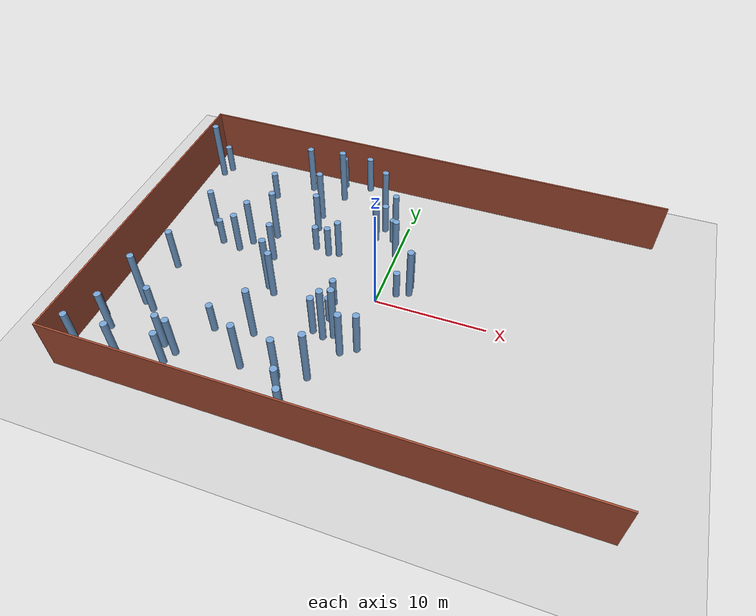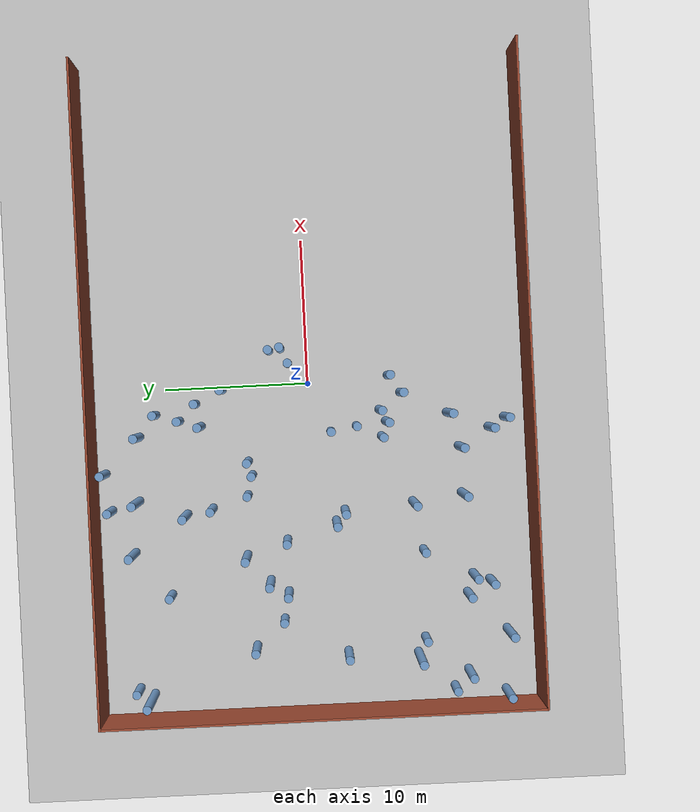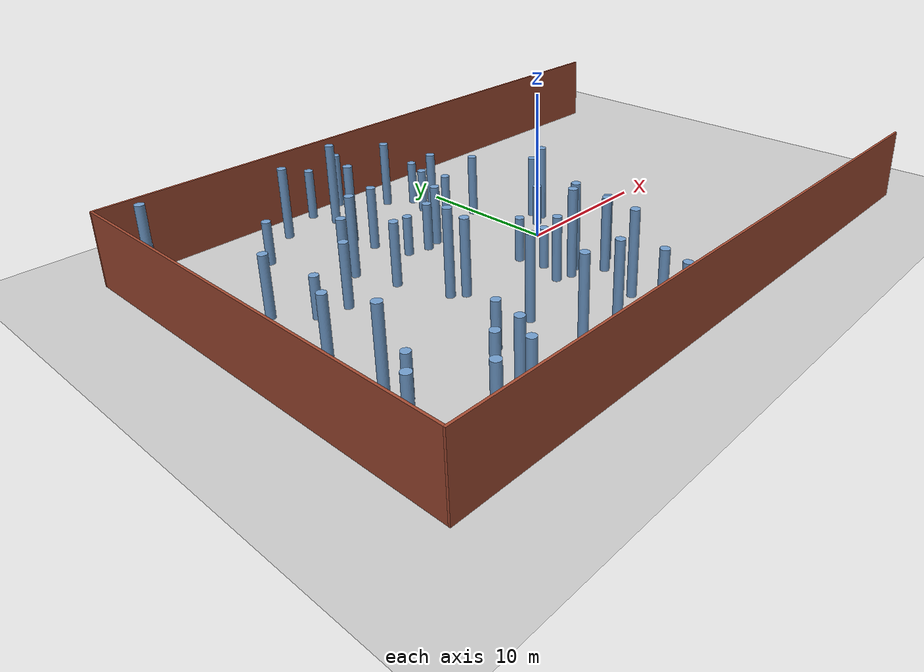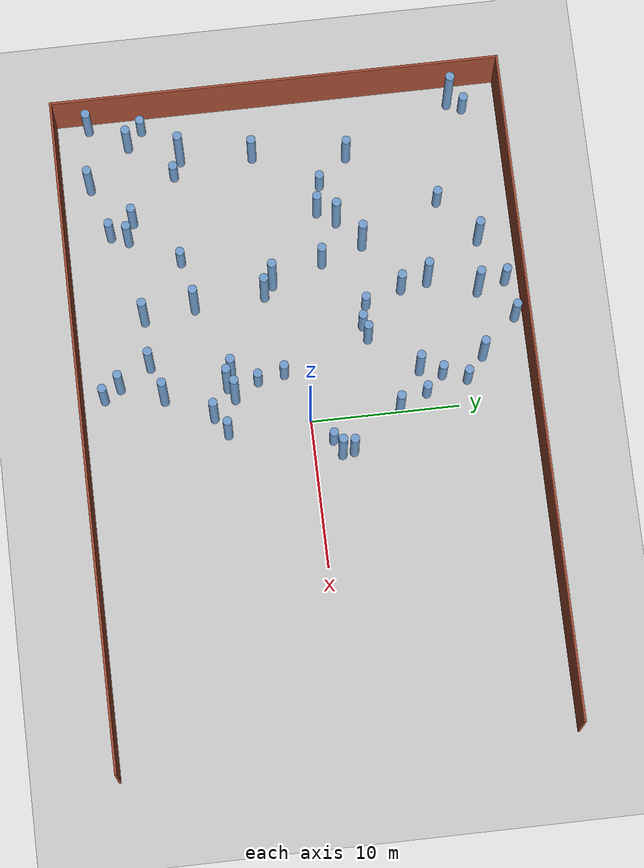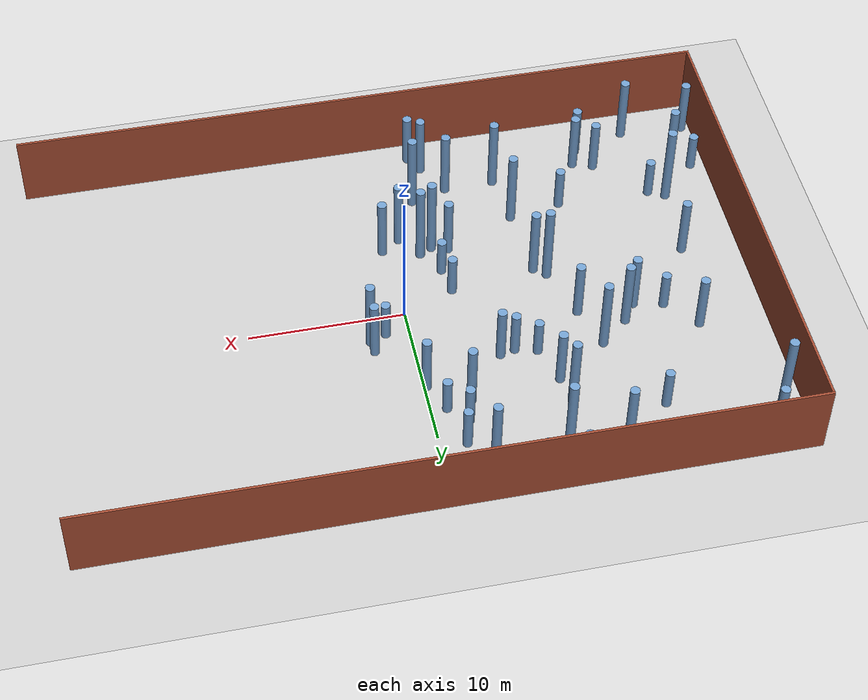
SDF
<sdf version="1.6">
 <world name="random_cylinder_world">
  <model name="ground_plane">
   <static>1</static>
   <link name="link">
    <collision name="collision">
     <geometry><plane><normal>0 0 1</normal><size>55.300000 55.300000</size></plane></geometry>
    </collision>
    <visual name="visual">
     <geometry><plane><normal>0 0 1</normal><size>55.300000 55.300000</size></plane></geometry>
     <material>
      <script><uri>file://media/materials/scripts/gazebo.material</uri><name>Gazebo/Grey</name></script>
     </material>
    </visual>
   </link>
  </model>
  <model name="wall_north">
   <static>1</static>
   <pose>0.000000 15.075000 2.500000 0 0 0</pose>
   <link name="link">
    <collision name="collision">
     <geometry><box><size>45.300000 0.150000 5.000000</size></box></geometry>
    </collision>
    <visual name="visual">
     <geometry><box><size>45.300000 0.150000 5.000000</size></box></geometry>
     <material>
      <script><uri>file://media/materials/scripts/gazebo.material</uri><name>Gazebo/Bricks</name></script>
     </material>
    </visual>
   </link>
  </model>
  <model name="wall_south">
   <static>1</static>
   <pose>0.000000 -15.075000 2.500000 0 0 0</pose>
   <link name="link">
    <collision name="collision">
     <geometry><box><size>45.300000 0.150000 5.000000</size></box></geometry>
    </collision>
    <visual name="visual">
     <geometry><box><size>45.300000 0.150000 5.000000</size></box></geometry>
     <material>
      <script><uri>file://media/materials/scripts/gazebo.material</uri><name>Gazebo/Bricks</name></script>
     </material>
    </visual>
   </link>
  </model>
  <model name="wall_west">
   <static>1</static>
   <pose>-22.575000 0.000000 2.500000 0 0 0</pose>
   <link name="link">
    <collision name="collision">
     <geometry><box><size>0.150000 30.000000 5.000000</size></box></geometry>
    </collision>
    <visual name="visual">
     <geometry><box><size>0.150000 30.000000 5.000000</size></box></geometry>
     <material>
      <script><uri>file://media/materials/scripts/gazebo.material</uri><name>Gazebo/Bricks</name></script>
     </material>
    </visual>
   </link>
  </model>
  <model name="cylinder_0000">
   <static>1</static>
   <pose>-3.167085 11.953957 2.323860 0 0 0</pose>
   <link name="link">
    <collision name="collision">
     <geometry><cylinder><radius>0.300000</radius><length>4.647720</length></cylinder></geometry>
    </collision>
    <visual name="visual">
     <geometry><cylinder><radius>0.300000</radius><length>4.647720</length></cylinder></geometry>
     <material><ambient>0.447 0.624 0.812 1</ambient><diffuse>0.447 0.624 0.812 1</diffuse></material>
    </visual>
   </link>
  </model>
  <model name="cylinder_0002">
   <static>1</static>
   <pose>-8.221317 14.086157 1.764251 0 0 0</pose>
   <link name="link">
    <collision name="collision">
     <geometry><cylinder><radius>0.300000</radius><length>3.528502</length></cylinder></geometry>
    </collision>
    <visual name="visual">
     <geometry><cylinder><radius>0.300000</radius><length>3.528502</length></cylinder></geometry>
     <material><ambient>0.447 0.624 0.812 1</ambient><diffuse>0.447 0.624 0.812 1</diffuse></material>
    </visual>
   </link>
  </model>
  <model name="cylinder_0003">
   <static>1</static>
   <pose>-13.762231 -10.904049 2.139732 0 0 0</pose>
   <link name="link">
    <collision name="collision">
     <geometry><cylinder><radius>0.300000</radius><length>4.279463</length></cylinder></geometry>
    </collision>
    <visual name="visual">
     <geometry><cylinder><radius>0.300000</radius><length>4.279463</length></cylinder></geometry>
     <material><ambient>0.447 0.624 0.812 1</ambient><diffuse>0.447 0.624 0.812 1</diffuse></material>
    </visual>
   </link>
  </model>
  <model name="cylinder_0006">
   <static>1</static>
   <pose>-2.925973 -13.578138 1.910709 0 0 0</pose>
   <link name="link">
    <collision name="collision">
     <geometry><cylinder><radius>0.300000</radius><length>3.821418</length></cylinder></geometry>
    </collision>
    <visual name="visual">
     <geometry><cylinder><radius>0.300000</radius><length>3.821418</length></cylinder></geometry>
     <material><ambient>0.447 0.624 0.812 1</ambient><diffuse>0.447 0.624 0.812 1</diffuse></material>
    </visual>
   </link>
  </model>
  <model name="cylinder_0007">
   <static>1</static>
   <pose>-21.959884 -12.853402 1.990813 0 0 0</pose>
   <link name="link">
    <collision name="collision">
     <geometry><cylinder><radius>0.300000</radius><length>3.981625</length></cylinder></geometry>
    </collision>
    <visual name="visual">
     <geometry><cylinder><radius>0.300000</radius><length>3.981625</length></cylinder></geometry>
     <material><ambient>0.447 0.624 0.812 1</ambient><diffuse>0.447 0.624 0.812 1</diffuse></material>
    </visual>
   </link>
  </model>
  <model name="cylinder_0008">
   <static>1</static>
   <pose>-0.885447 -6.391591 2.492052 0 0 0</pose>
   <link name="link">
    <collision name="collision">
     <geometry><cylinder><radius>0.300000</radius><length>4.984104</length></cylinder></geometry>
    </collision>
    <visual name="visual">
     <geometry><cylinder><radius>0.300000</radius><length>4.984104</length></cylinder></geometry>
     <material><ambient>0.447 0.624 0.812 1</ambient><diffuse>0.447 0.624 0.812 1</diffuse></material>
    </visual>
   </link>
  </model>
  <model name="cylinder_0012">
   <static>1</static>
   <pose>-8.378820 7.033207 2.127923 0 0 0</pose>
   <link name="link">
    <collision name="collision">
     <geometry><cylinder><radius>0.300000</radius><length>4.255846</length></cylinder></geometry>
    </collision>
    <visual name="visual">
     <geometry><cylinder><radius>0.300000</radius><length>4.255846</length></cylinder></geometry>
     <material><ambient>0.447 0.624 0.812 1</ambient><diffuse>0.447 0.624 0.812 1</diffuse></material>
    </visual>
   </link>
  </model>
  <model name="cylinder_0014">
   <static>1</static>
   <pose>-8.532530 -6.924293 2.763043 0 0 0</pose>
   <link name="link">
    <collision name="collision">
     <geometry><cylinder><radius>0.300000</radius><length>5.526087</length></cylinder></geometry>
    </collision>
    <visual name="visual">
     <geometry><cylinder><radius>0.300000</radius><length>5.526087</length></cylinder></geometry>
     <material><ambient>0.447 0.624 0.812 1</ambient><diffuse>0.447 0.624 0.812 1</diffuse></material>
    </visual>
   </link>
  </model>
  <model name="cylinder_0015">
   <static>1</static>
   <pose>-3.383510 -1.434265 1.488336 0 0 0</pose>
   <link name="link">
    <collision name="collision">
     <geometry><cylinder><radius>0.300000</radius><length>2.976672</length></cylinder></geometry>
    </collision>
    <visual name="visual">
     <geometry><cylinder><radius>0.300000</radius><length>2.976672</length></cylinder></geometry>
     <material><ambient>0.447 0.624 0.812 1</ambient><diffuse>0.447 0.624 0.812 1</diffuse></material>
    </visual>
   </link>
  </model>
  <model name="cylinder_0016">
   <static>1</static>
   <pose>-2.625741 7.609434 2.378173 0 0 0</pose>
   <link name="link">
    <collision name="collision">
     <geometry><cylinder><radius>0.300000</radius><length>4.756346</length></cylinder></geometry>
    </collision>
    <visual name="visual">
     <geometry><cylinder><radius>0.300000</radius><length>4.756346</length></cylinder></geometry>
     <material><ambient>0.447 0.624 0.812 1</ambient><diffuse>0.447 0.624 0.812 1</diffuse></material>
    </visual>
   </link>
  </model>
  <model name="cylinder_0018">
   <static>1</static>
   <pose>-8.075124 -10.367343 2.665858 0 0 0</pose>
   <link name="link">
    <collision name="collision">
     <geometry><cylinder><radius>0.300000</radius><length>5.331715</length></cylinder></geometry>
    </collision>
    <visual name="visual">
     <geometry><cylinder><radius>0.300000</radius><length>5.331715</length></cylinder></geometry>
     <material><ambient>0.447 0.624 0.812 1</ambient><diffuse>0.447 0.624 0.812 1</diffuse></material>
    </visual>
   </link>
  </model>
  <model name="cylinder_0019">
   <static>1</static>
   <pose>-14.218673 -12.068070 1.904102 0 0 0</pose>
   <link name="link">
    <collision name="collision">
     <geometry><cylinder><radius>0.300000</radius><length>3.808205</length></cylinder></geometry>
    </collision>
    <visual name="visual">
     <geometry><cylinder><radius>0.300000</radius><length>3.808205</length></cylinder></geometry>
     <material><ambient>0.447 0.624 0.812 1</ambient><diffuse>0.447 0.624 0.812 1</diffuse></material>
    </visual>
   </link>
  </model>
  <model name="cylinder_0021">
   <static>1</static>
   <pose>-10.800099 1.929645 2.137692 0 0 0</pose>
   <link name="link">
    <collision name="collision">
     <geometry><cylinder><radius>0.300000</radius><length>4.275383</length></cylinder></geometry>
    </collision>
    <visual name="visual">
     <geometry><cylinder><radius>0.300000</radius><length>4.275383</length></cylinder></geometry>
     <material><ambient>0.447 0.624 0.812 1</ambient><diffuse>0.447 0.624 0.812 1</diffuse></material>
    </visual>
   </link>
  </model>
  <model name="cylinder_0023">
   <static>1</static>
   <pose>-18.796412 -1.959741 2.160347 0 0 0</pose>
   <link name="link">
    <collision name="collision">
     <geometry><cylinder><radius>0.300000</radius><length>4.320694</length></cylinder></geometry>
    </collision>
    <visual name="visual">
     <geometry><cylinder><radius>0.300000</radius><length>4.320694</length></cylinder></geometry>
     <material><ambient>0.447 0.624 0.812 1</ambient><diffuse>0.447 0.624 0.812 1</diffuse></material>
    </visual>
   </link>
  </model>
  <model name="cylinder_0024">
   <static>1</static>
   <pose>-19.099212 -6.841414 2.916641 0 0 0</pose>
   <link name="link">
    <collision name="collision">
     <geometry><cylinder><radius>0.300000</radius><length>5.833282</length></cylinder></geometry>
    </collision>
    <visual name="visual">
     <geometry><cylinder><radius>0.300000</radius><length>5.833282</length></cylinder></geometry>
     <material><ambient>0.447 0.624 0.812 1</ambient><diffuse>0.447 0.624 0.812 1</diffuse></material>
    </visual>
   </link>
  </model>
  <model name="cylinder_0025">
   <static>1</static>
   <pose>0.339230 -5.578163 2.224892 0 0 0</pose>
   <link name="link">
    <collision name="collision">
     <geometry><cylinder><radius>0.300000</radius><length>4.449785</length></cylinder></geometry>
    </collision>
    <visual name="visual">
     <geometry><cylinder><radius>0.300000</radius><length>4.449785</length></cylinder></geometry>
     <material><ambient>0.447 0.624 0.812 1</ambient><diffuse>0.447 0.624 0.812 1</diffuse></material>
    </visual>
   </link>
  </model>
  <model name="cylinder_0026">
   <static>1</static>
   <pose>-14.419566 2.002662 2.122941 0 0 0</pose>
   <link name="link">
    <collision name="collision">
     <geometry><cylinder><radius>0.300000</radius><length>4.245882</length></cylinder></geometry>
    </collision>
    <visual name="visual">
     <geometry><cylinder><radius>0.300000</radius><length>4.245882</length></cylinder></geometry>
     <material><ambient>0.447 0.624 0.812 1</ambient><diffuse>0.447 0.624 0.812 1</diffuse></material>
    </visual>
   </link>
  </model>
  <model name="cylinder_0027">
   <static>1</static>
   <pose>1.479525 1.356764 1.412433 0 0 0</pose>
   <link name="link">
    <collision name="collision">
     <geometry><cylinder><radius>0.300000</radius><length>2.824867</length></cylinder></geometry>
    </collision>
    <visual name="visual">
     <geometry><cylinder><radius>0.300000</radius><length>2.824867</length></cylinder></geometry>
     <material><ambient>0.447 0.624 0.812 1</ambient><diffuse>0.447 0.624 0.812 1</diffuse></material>
    </visual>
   </link>
  </model>
  <model name="cylinder_0028">
   <static>1</static>
   <pose>-2.186210 9.104931 1.522767 0 0 0</pose>
   <link name="link">
    <collision name="collision">
     <geometry><cylinder><radius>0.300000</radius><length>3.045533</length></cylinder></geometry>
    </collision>
    <visual name="visual">
     <geometry><cylinder><radius>0.300000</radius><length>3.045533</length></cylinder></geometry>
     <material><ambient>0.447 0.624 0.812 1</ambient><diffuse>0.447 0.624 0.812 1</diffuse></material>
    </visual>
   </link>
  </model>
  <model name="cylinder_0029">
   <static>1</static>
   <pose>-7.651984 12.160558 2.857650 0 0 0</pose>
   <link name="link">
    <collision name="collision">
     <geometry><cylinder><radius>0.300000</radius><length>5.715299</length></cylinder></geometry>
    </collision>
    <visual name="visual">
     <geometry><cylinder><radius>0.300000</radius><length>5.715299</length></cylinder></geometry>
     <material><ambient>0.447 0.624 0.812 1</ambient><diffuse>0.447 0.624 0.812 1</diffuse></material>
    </visual>
   </link>
  </model>
  <model name="cylinder_0030">
   <static>1</static>
   <pose>-1.046592 7.922910 1.300578 0 0 0</pose>
   <link name="link">
    <collision name="collision">
     <geometry><cylinder><radius>0.300000</radius><length>2.601157</length></cylinder></geometry>
    </collision>
    <visual name="visual">
     <geometry><cylinder><radius>0.300000</radius><length>2.601157</length></cylinder></geometry>
     <material><ambient>0.447 0.624 0.812 1</ambient><diffuse>0.447 0.624 0.812 1</diffuse></material>
    </visual>
   </link>
  </model>
  <model name="cylinder_0032">
   <static>1</static>
   <pose>-0.157746 6.016227 2.150497 0 0 0</pose>
   <link name="link">
    <collision name="collision">
     <geometry><cylinder><radius>0.300000</radius><length>4.300993</length></cylinder></geometry>
    </collision>
    <visual name="visual">
     <geometry><cylinder><radius>0.300000</radius><length>4.300993</length></cylinder></geometry>
     <material><ambient>0.447 0.624 0.812 1</ambient><diffuse>0.447 0.624 0.812 1</diffuse></material>
    </visual>
   </link>
  </model>
  <model name="cylinder_0037">
   <static>1</static>
   <pose>-15.061785 -10.466532 1.935564 0 0 0</pose>
   <link name="link">
    <collision name="collision">
     <geometry><cylinder><radius>0.300000</radius><length>3.871128</length></cylinder></geometry>
    </collision>
    <visual name="visual">
     <geometry><cylinder><radius>0.300000</radius><length>3.871128</length></cylinder></geometry>
     <material><ambient>0.447 0.624 0.812 1</ambient><diffuse>0.447 0.624 0.812 1</diffuse></material>
    </visual>
   </link>
  </model>
  <model name="cylinder_0038">
   <static>1</static>
   <pose>-6.171053 4.179700 1.621770 0 0 0</pose>
   <link name="link">
    <collision name="collision">
     <geometry><cylinder><radius>0.300000</radius><length>3.243540</length></cylinder></geometry>
    </collision>
    <visual name="visual">
     <geometry><cylinder><radius>0.300000</radius><length>3.243540</length></cylinder></geometry>
     <material><ambient>0.447 0.624 0.812 1</ambient><diffuse>0.447 0.624 0.812 1</diffuse></material>
    </visual>
   </link>
  </model>
  <model name="cylinder_0043">
   <static>1</static>
   <pose>-5.638101 14.435229 1.930592 0 0 0</pose>
   <link name="link">
    <collision name="collision">
     <geometry><cylinder><radius>0.300000</radius><length>3.861183</length></cylinder></geometry>
    </collision>
    <visual name="visual">
     <geometry><cylinder><radius>0.300000</radius><length>3.861183</length></cylinder></geometry>
     <material><ambient>0.447 0.624 0.812 1</ambient><diffuse>0.447 0.624 0.812 1</diffuse></material>
    </visual>
   </link>
  </model>
  <model name="cylinder_0044">
   <static>1</static>
   <pose>-3.577526 -12.454730 2.262050 0 0 0</pose>
   <link name="link">
    <collision name="collision">
     <geometry><cylinder><radius>0.300000</radius><length>4.524100</length></cylinder></geometry>
    </collision>
    <visual name="visual">
     <geometry><cylinder><radius>0.300000</radius><length>4.524100</length></cylinder></geometry>
     <material><ambient>0.447 0.624 0.812 1</ambient><diffuse>0.447 0.624 0.812 1</diffuse></material>
    </visual>
   </link>
  </model>
  <model name="cylinder_0046">
   <static>1</static>
   <pose>-20.452989 -10.290010 2.107298 0 0 0</pose>
   <link name="link">
    <collision name="collision">
     <geometry><cylinder><radius>0.300000</radius><length>4.214596</length></cylinder></geometry>
    </collision>
    <visual name="visual">
     <geometry><cylinder><radius>0.300000</radius><length>4.214596</length></cylinder></geometry>
     <material><ambient>0.447 0.624 0.812 1</ambient><diffuse>0.447 0.624 0.812 1</diffuse></material>
    </visual>
   </link>
  </model>
  <model name="cylinder_0049">
   <static>1</static>
   <pose>-13.580790 3.220708 2.522421 0 0 0</pose>
   <link name="link">
    <collision name="collision">
     <geometry><cylinder><radius>0.300000</radius><length>5.044842</length></cylinder></geometry>
    </collision>
    <visual name="visual">
     <geometry><cylinder><radius>0.300000</radius><length>5.044842</length></cylinder></geometry>
     <material><ambient>0.447 0.624 0.812 1</ambient><diffuse>0.447 0.624 0.812 1</diffuse></material>
    </visual>
   </link>
  </model>
  <model name="cylinder_0051">
   <static>1</static>
   <pose>2.417595 2.631717 2.161926 0 0 0</pose>
   <link name="link">
    <collision name="collision">
     <geometry><cylinder><radius>0.300000</radius><length>4.323852</length></cylinder></geometry>
    </collision>
    <visual name="visual">
     <geometry><cylinder><radius>0.300000</radius><length>4.323852</length></cylinder></geometry>
     <material><ambient>0.447 0.624 0.812 1</ambient><diffuse>0.447 0.624 0.812 1</diffuse></material>
    </visual>
   </link>
  </model>
  <model name="cylinder_0055">
   <static>1</static>
   <pose>-11.936258 -7.517108 1.534335 0 0 0</pose>
   <link name="link">
    <collision name="collision">
     <geometry><cylinder><radius>0.300000</radius><length>3.068671</length></cylinder></geometry>
    </collision>
    <visual name="visual">
     <geometry><cylinder><radius>0.300000</radius><length>3.068671</length></cylinder></geometry>
     <material><ambient>0.447 0.624 0.812 1</ambient><diffuse>0.447 0.624 0.812 1</diffuse></material>
    </visual>
   </link>
  </model>
  <model name="cylinder_0056">
   <static>1</static>
   <pose>-14.276676 10.173376 1.472257 0 0 0</pose>
   <link name="link">
    <collision name="collision">
     <geometry><cylinder><radius>0.300000</radius><length>2.944513</length></cylinder></geometry>
    </collision>
    <visual name="visual">
     <geometry><cylinder><radius>0.300000</radius><length>2.944513</length></cylinder></geometry>
     <material><ambient>0.447 0.624 0.812 1</ambient><diffuse>0.447 0.624 0.812 1</diffuse></material>
    </visual>
   </link>
  </model>
  <model name="cylinder_0059">
   <static>1</static>
   <pose>-21.167707 11.711493 2.984012 0 0 0</pose>
   <link name="link">
    <collision name="collision">
     <geometry><cylinder><radius>0.300000</radius><length>5.968025</length></cylinder></geometry>
    </collision>
    <visual name="visual">
     <geometry><cylinder><radius>0.300000</radius><length>5.968025</length></cylinder></geometry>
     <material><ambient>0.447 0.624 0.812 1</ambient><diffuse>0.447 0.624 0.812 1</diffuse></material>
    </visual>
   </link>
  </model>
  <model name="cylinder_0062">
   <static>1</static>
   <pose>-16.323807 2.376961 1.381521 0 0 0</pose>
   <link name="link">
    <collision name="collision">
     <geometry><cylinder><radius>0.300000</radius><length>2.763041</length></cylinder></geometry>
    </collision>
    <visual name="visual">
     <geometry><cylinder><radius>0.300000</radius><length>2.763041</length></cylinder></geometry>
     <material><ambient>0.447 0.624 0.812 1</ambient><diffuse>0.447 0.624 0.812 1</diffuse></material>
    </visual>
   </link>
  </model>
  <model name="cylinder_0064">
   <static>1</static>
   <pose>-18.052537 -7.378900 1.416453 0 0 0</pose>
   <link name="link">
    <collision name="collision">
     <geometry><cylinder><radius>0.300000</radius><length>2.832906</length></cylinder></geometry>
    </collision>
    <visual name="visual">
     <geometry><cylinder><radius>0.300000</radius><length>2.832906</length></cylinder></geometry>
     <material><ambient>0.447 0.624 0.812 1</ambient><diffuse>0.447 0.624 0.812 1</diffuse></material>
    </visual>
   </link>
  </model>
  <model name="cylinder_0068">
   <static>1</static>
   <pose>-2.845313 -5.297883 2.935421 0 0 0</pose>
   <link name="link">
    <collision name="collision">
     <geometry><cylinder><radius>0.300000</radius><length>5.870842</length></cylinder></geometry>
    </collision>
    <visual name="visual">
     <geometry><cylinder><radius>0.300000</radius><length>5.870842</length></cylinder></geometry>
     <material><ambient>0.447 0.624 0.812 1</ambient><diffuse>0.447 0.624 0.812 1</diffuse></material>
    </visual>
   </link>
  </model>
  <model name="cylinder_0070">
   <static>1</static>
   <pose>-2.026089 -4.872165 2.928861 0 0 0</pose>
   <link name="link">
    <collision name="collision">
     <geometry><cylinder><radius>0.300000</radius><length>5.857723</length></cylinder></geometry>
    </collision>
    <visual name="visual">
     <geometry><cylinder><radius>0.300000</radius><length>5.857723</length></cylinder></geometry>
     <material><ambient>0.447 0.624 0.812 1</ambient><diffuse>0.447 0.624 0.812 1</diffuse></material>
    </visual>
   </link>
  </model>
  <model name="cylinder_0071">
   <static>1</static>
   <pose>-11.743494 4.770687 2.705905 0 0 0</pose>
   <link name="link">
    <collision name="collision">
     <geometry><cylinder><radius>0.300000</radius><length>5.411810</length></cylinder></geometry>
    </collision>
    <visual name="visual">
     <geometry><cylinder><radius>0.300000</radius><length>5.411810</length></cylinder></geometry>
     <material><ambient>0.447 0.624 0.812 1</ambient><diffuse>0.447 0.624 0.812 1</diffuse></material>
    </visual>
   </link>
  </model>
  <model name="cylinder_0072">
   <static>1</static>
   <pose>-9.637297 -1.536535 2.909439 0 0 0</pose>
   <link name="link">
    <collision name="collision">
     <geometry><cylinder><radius>0.300000</radius><length>5.818879</length></cylinder></geometry>
    </collision>
    <visual name="visual">
     <geometry><cylinder><radius>0.300000</radius><length>5.818879</length></cylinder></geometry>
     <material><ambient>0.447 0.624 0.812 1</ambient><diffuse>0.447 0.624 0.812 1</diffuse></material>
    </visual>
   </link>
  </model>
  <model name="cylinder_0074">
   <static>1</static>
   <pose>-1.692634 10.753670 1.535402 0 0 0</pose>
   <link name="link">
    <collision name="collision">
     <geometry><cylinder><radius>0.300000</radius><length>3.070803</length></cylinder></geometry>
    </collision>
    <visual name="visual">
     <geometry><cylinder><radius>0.300000</radius><length>3.070803</length></cylinder></geometry>
     <material><ambient>0.447 0.624 0.812 1</ambient><diffuse>0.447 0.624 0.812 1</diffuse></material>
    </visual>
   </link>
  </model>
  <model name="cylinder_0081">
   <static>1</static>
   <pose>-21.565860 -9.282681 1.347388 0 0 0</pose>
   <link name="link">
    <collision name="collision">
     <geometry><cylinder><radius>0.300000</radius><length>2.694776</length></cylinder></geometry>
    </collision>
    <visual name="visual">
     <geometry><cylinder><radius>0.300000</radius><length>2.694776</length></cylinder></geometry>
     <material><ambient>0.447 0.624 0.812 1</ambient><diffuse>0.447 0.624 0.812 1</diffuse></material>
    </visual>
   </link>
  </model>
  <model name="cylinder_0083">
   <static>1</static>
   <pose>-4.824357 -10.316843 2.439687 0 0 0</pose>
   <link name="link">
    <collision name="collision">
     <geometry><cylinder><radius>0.300000</radius><length>4.879373</length></cylinder></geometry>
    </collision>
    <visual name="visual">
     <geometry><cylinder><radius>0.300000</radius><length>4.879373</length></cylinder></geometry>
     <material><ambient>0.447 0.624 0.812 1</ambient><diffuse>0.447 0.624 0.812 1</diffuse></material>
    </visual>
   </link>
  </model>
  <model name="cylinder_0085">
   <static>1</static>
   <pose>-8.707295 8.842491 2.685415 0 0 0</pose>
   <link name="link">
    <collision name="collision">
     <geometry><cylinder><radius>0.300000</radius><length>5.370830</length></cylinder></geometry>
    </collision>
    <visual name="visual">
     <geometry><cylinder><radius>0.300000</radius><length>5.370830</length></cylinder></geometry>
     <material><ambient>0.447 0.624 0.812 1</ambient><diffuse>0.447 0.624 0.812 1</diffuse></material>
    </visual>
   </link>
  </model>
  <model name="cylinder_0086">
   <static>1</static>
   <pose>2.526604 1.834158 2.615833 0 0 0</pose>
   <link name="link">
    <collision name="collision">
     <geometry><cylinder><radius>0.300000</radius><length>5.231666</length></cylinder></geometry>
    </collision>
    <visual name="visual">
     <geometry><cylinder><radius>0.300000</radius><length>5.231666</length></cylinder></geometry>
     <material><ambient>0.447 0.624 0.812 1</ambient><diffuse>0.447 0.624 0.812 1</diffuse></material>
    </visual>
   </link>
  </model>
  <model name="cylinder_0088">
   <static>1</static>
   <pose>-17.731823 -13.109919 2.369793 0 0 0</pose>
   <link name="link">
    <collision name="collision">
     <geometry><cylinder><radius>0.300000</radius><length>4.739586</length></cylinder></geometry>
    </collision>
    <visual name="visual">
     <geometry><cylinder><radius>0.300000</radius><length>4.739586</length></cylinder></geometry>
     <material><ambient>0.447 0.624 0.812 1</ambient><diffuse>0.447 0.624 0.812 1</diffuse></material>
    </visual>
   </link>
  </model>
  <model name="cylinder_0090">
   <static>1</static>
   <pose>-3.883567 -4.956214 2.148343 0 0 0</pose>
   <link name="link">
    <collision name="collision">
     <geometry><cylinder><radius>0.300000</radius><length>4.296687</length></cylinder></geometry>
    </collision>
    <visual name="visual">
     <geometry><cylinder><radius>0.300000</radius><length>4.296687</length></cylinder></geometry>
     <material><ambient>0.447 0.624 0.812 1</ambient><diffuse>0.447 0.624 0.812 1</diffuse></material>
    </visual>
   </link>
  </model>
  <model name="cylinder_0093">
   <static>1</static>
   <pose>-5.208568 4.418084 2.034991 0 0 0</pose>
   <link name="link">
    <collision name="collision">
     <geometry><cylinder><radius>0.300000</radius><length>4.069983</length></cylinder></geometry>
    </collision>
    <visual name="visual">
     <geometry><cylinder><radius>0.300000</radius><length>4.069983</length></cylinder></geometry>
     <material><ambient>0.447 0.624 0.812 1</ambient><diffuse>0.447 0.624 0.812 1</diffuse></material>
    </visual>
   </link>
  </model>
  <model name="cylinder_0094">
   <static>1</static>
   <pose>-7.559071 4.551666 1.343014 0 0 0</pose>
   <link name="link">
    <collision name="collision">
     <geometry><cylinder><radius>0.300000</radius><length>2.686028</length></cylinder></geometry>
    </collision>
    <visual name="visual">
     <geometry><cylinder><radius>0.300000</radius><length>2.686028</length></cylinder></geometry>
     <material><ambient>0.447 0.624 0.812 1</ambient><diffuse>0.447 0.624 0.812 1</diffuse></material>
    </visual>
   </link>
  </model>
  <model name="cylinder_0096">
   <static>1</static>
   <pose>-18.117130 4.391608 2.053185 0 0 0</pose>
   <link name="link">
    <collision name="collision">
     <geometry><cylinder><radius>0.300000</radius><length>4.106371</length></cylinder></geometry>
    </collision>
    <visual name="visual">
     <geometry><cylinder><radius>0.300000</radius><length>4.106371</length></cylinder></geometry>
     <material><ambient>0.447 0.624 0.812 1</ambient><diffuse>0.447 0.624 0.812 1</diffuse></material>
    </visual>
   </link>
  </model>
  <model name="cylinder_0097">
   <static>1</static>
   <pose>-20.718302 12.699753 1.438417 0 0 0</pose>
   <link name="link">
    <collision name="collision">
     <geometry><cylinder><radius>0.300000</radius><length>2.876834</length></cylinder></geometry>
    </collision>
    <visual name="visual">
     <geometry><cylinder><radius>0.300000</radius><length>2.876834</length></cylinder></geometry>
     <material><ambient>0.447 0.624 0.812 1</ambient><diffuse>0.447 0.624 0.812 1</diffuse></material>
    </visual>
   </link>
  </model>
  <model name="cylinder_0098">
   <static>1</static>
   <pose>-3.087027 -3.233961 1.362153 0 0 0</pose>
   <link name="link">
    <collision name="collision">
     <geometry><cylinder><radius>0.300000</radius><length>2.724307</length></cylinder></geometry>
    </collision>
    <visual name="visual">
     <geometry><cylinder><radius>0.300000</radius><length>2.724307</length></cylinder></geometry>
     <material><ambient>0.447 0.624 0.812 1</ambient><diffuse>0.447 0.624 0.812 1</diffuse></material>
    </visual>
   </link>
  </model>
  <model name="cylinder_0099">
   <static>1</static>
   <pose>-2.444633 -9.589393 2.839244 0 0 0</pose>
   <link name="link">
    <collision name="collision">
     <geometry><cylinder><radius>0.300000</radius><length>5.678488</length></cylinder></geometry>
    </collision>
    <visual name="visual">
     <geometry><cylinder><radius>0.300000</radius><length>5.678488</length></cylinder></geometry>
     <material><ambient>0.447 0.624 0.812 1</ambient><diffuse>0.447 0.624 0.812 1</diffuse></material>
    </visual>
   </link>
  </model>
  <model name="cylinder_0104">
   <static>1</static>
   <pose>-8.897361 -2.158264 2.562415 0 0 0</pose>
   <link name="link">
    <collision name="collision">
     <geometry><cylinder><radius>0.300000</radius><length>5.124829</length></cylinder></geometry>
    </collision>
    <visual name="visual">
     <geometry><cylinder><radius>0.300000</radius><length>5.124829</length></cylinder></geometry>
     <material><ambient>0.447 0.624 0.812 1</ambient><diffuse>0.447 0.624 0.812 1</diffuse></material>
    </visual>
   </link>
  </model>
  <model name="cylinder_0105">
   <static>1</static>
   <pose>-11.228265 12.595004 2.490829 0 0 0</pose>
   <link name="link">
    <collision name="collision">
     <geometry><cylinder><radius>0.300000</radius><length>4.981657</length></cylinder></geometry>
    </collision>
    <visual name="visual">
     <geometry><cylinder><radius>0.300000</radius><length>4.981657</length></cylinder></geometry>
     <material><ambient>0.447 0.624 0.812 1</ambient><diffuse>0.447 0.624 0.812 1</diffuse></material>
    </visual>
   </link>
  </model>
 </world>
</sdf>
